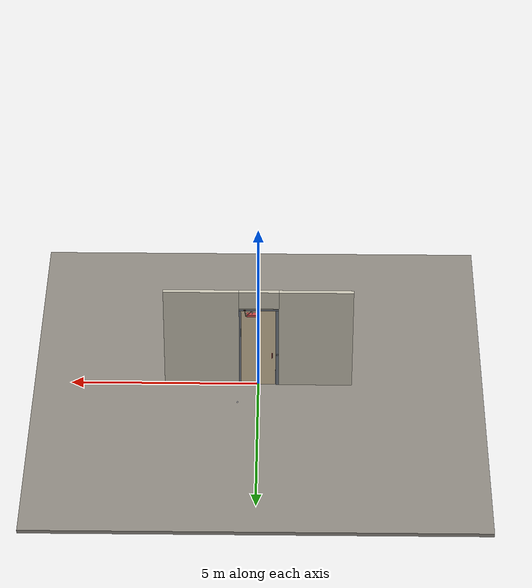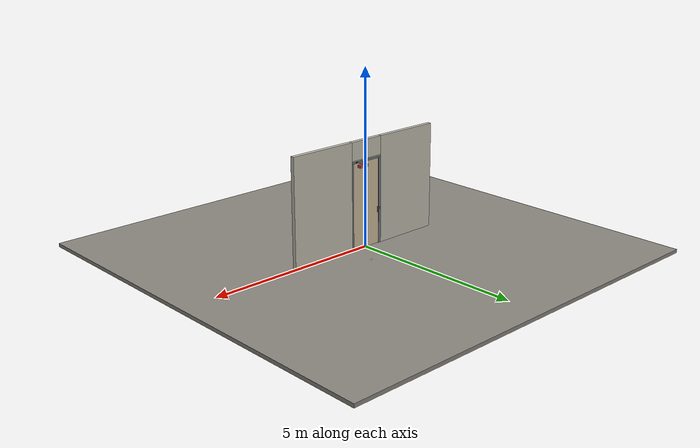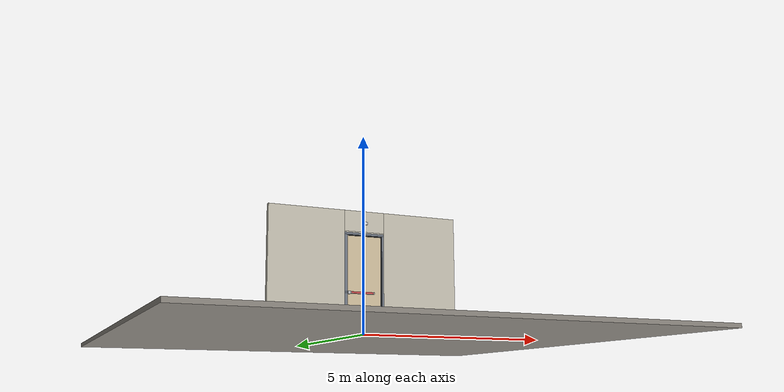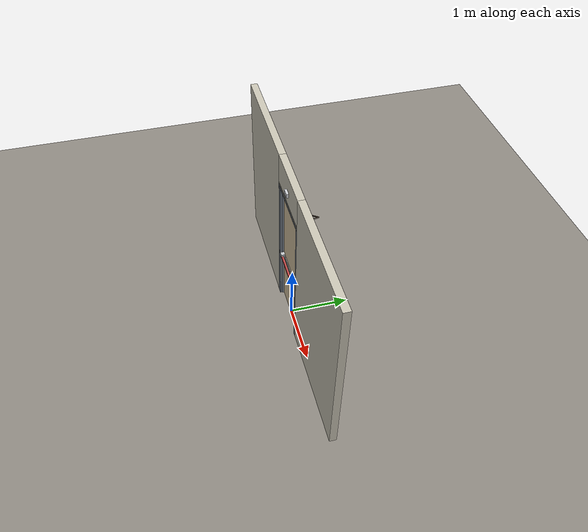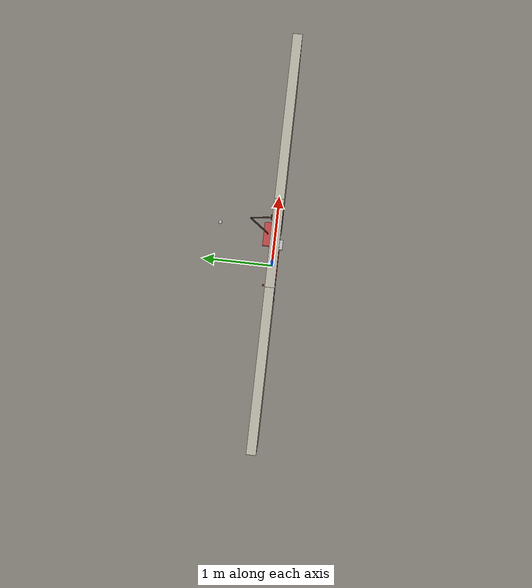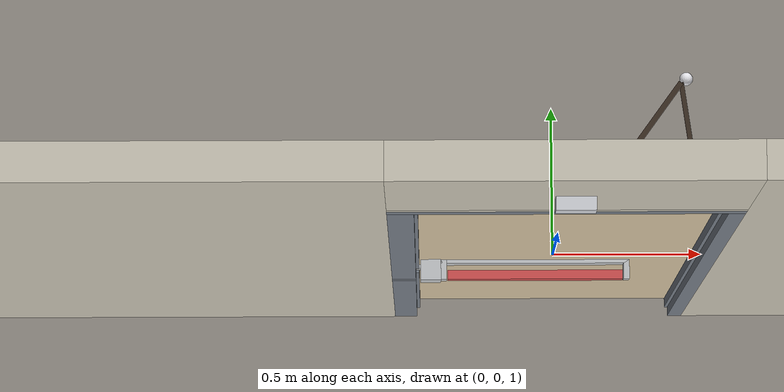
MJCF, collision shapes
<?xml version="1.0" ?>
<mujoco model="db0618_swing_single_full">
  <compiler angle="radian" meshdir="../../hardware" texturedir="../../textures" autolimits="true" inertiafromgeom="false"/>
  <option timestep="0.002" integrator="implicitfast" cone="elliptic" impratio="10" noslip_iterations="3">
    <flag multiccd="enable"/>
  </option>
  <size memory="16M"/>
  <default>
    <geom condim="4" solref="0.005 1" solimp="0.95 0.99 0.001"/>
    <joint solreflimit="0.005 1" solimplimit="0.95 0.99 0.001"/>
    <tendon solreflimit="0.005 1"/>
    <equality solref="0.002 1"/>
  </default>
  <visual>
    <headlight ambient="0.4 0.4 0.4" diffuse="0.7 0.7 0.7" specular="0.2 0.2 0.2"/>
    <quality shadowsize="4096"/>
    <map znear="0.01" zfar="60"/>
  </visual>
  <asset>
    <mesh name="closer_body_fdc4667657" file="closer_body_fdc4667657.obj"/>
    <mesh name="exit_sign_a6449bfa2c" file="exit_sign_a6449bfa2c.obj"/>
    <mesh name="hinge_e22b26c0c1" file="hinge_e22b26c0c1.obj"/>
    <mesh name="hinge_jamb_e1d088f8dc" file="hinge_jamb_e1d088f8dc.obj"/>
    <mesh name="pull_1e5d69a91a" file="pull_1e5d69a91a.obj"/>
    <mesh name="touchbar_pad_2729a067b4" file="touchbar_pad_2729a067b4.obj"/>
    <material name="mat_floor" rgba="0.55 0.53 0.5 1" specular="0.2" shininess="0.15" reflectance="0"/>
    <material name="mat_wall" rgba="0.78 0.76 0.7 1" specular="0.2" shininess="0.1" reflectance="0"/>
    <material name="mat_leaf" rgba="0.82 0.75 0.62 1" specular="0.23" shininess="0.34" reflectance="0.02"/>
    <material name="mat_leaf_louver" rgba="0.697 0.637 0.527 1" specular="0.2" shininess="0.4" reflectance="0"/>
    <material name="mat_hinge" rgba="0.65 0.66 0.68 1" specular="0.74" shininess="0.5" reflectance="0.36"/>
    <material name="mat_op_stainless" rgba="0.75 0.76 0.77 1" specular="0.8" shininess="0.65" reflectance="0.4"/>
    <material name="mat_bolt" rgba="0.75 0.76 0.77 1" specular="0.8" shininess="0.65" reflectance="0.4"/>
    <material name="mat_frame" rgba="0.45 0.48 0.52 1" specular="0.32" shininess="0.6" reflectance="0.08"/>
    <material name="mat_seal" rgba="0.1 0.1 0.1 1" specular="0.2" shininess="0.1" reflectance="0"/>
    <material name="mat_closer" rgba="0.22 0.17 0.13 1" specular="0.8" shininess="0.6" reflectance="0.4"/>
    <material name="mat_exit_sign" rgba="0.85 0.1 0.1 1" specular="0.2" shininess="0.6" reflectance="0"/>
    <material name="mat_sign_bracket" rgba="0.8 0.81 0.83 1" specular="0.8" shininess="0.6" reflectance="0.4"/>
    <material name="mat_stop" rgba="0.9 0.9 0.92 1" specular="0.8" shininess="0.9" reflectance="0.4"/>
    <texture name="skybox" type="skybox" builtin="gradient" rgb1="0.6 0.7 0.85" rgb2="0.9 0.92 0.95" width="256" height="256"/>
  </asset>
  <worldbody>
    <light name="sun" pos="1.5 -2.5 4" dir="-0.3 0.5 -0.8" directional="true" diffuse="0.8 0.8 0.8" specular="0.3 0.3 0.3" castshadow="true"/>
    <light name="fill" pos="-1.5 2.5 3" dir="0.3 -0.5 -0.7" directional="true" diffuse="0.35 0.35 0.4" castshadow="false"/>
    <camera name="robot_view" pos="0 -2.951313 2.043887" xyaxes="1 0 0 0 0.26963 0.962964" fovy="52"/>
    <camera name="far_view" pos="0 2.894312 2.043887" xyaxes="-1 0 0 0 -0.26963 0.962964" fovy="52"/>
    <camera name="iso" pos="-2.221337 -2.483663 2.511538" xyaxes="0.741536 -0.670913 0 0.242917 0.268487 0.932151" fovy="46"/>
    <camera name="detail_handle" pos="-0.1865 -0.718 1.296" xyaxes="0.97561 0.219512 0 -0.070934 0.315262 0.94635" fovy="38"/>
    <geom name="floor" type="box" size="6 6 0.05" pos="0 0 -0.05" material="mat_floor" group="0" contype="1" conaffinity="1" friction="0.8 0.005 0.0001" density="2400"/>
    <geom name="wall_left" type="box" size="0.97975 0.0575 1.5255" pos="-1.52025 -0.0285 1.5255" material="mat_wall" group="0" contype="1" conaffinity="1" friction="0.6 0.005 0.0001" density="800"/>
    <geom name="wall_right" type="box" size="0.99475 0.0575 1.5255" pos="1.50525 -0.0285 1.5255" material="mat_wall" group="0" contype="1" conaffinity="1" friction="0.6 0.005 0.0001" density="800"/>
    <geom name="wall_header" type="box" size="0.5255 0.0575 0.26" pos="-0.015 -0.0285 2.791" material="mat_wall" group="0" contype="1" conaffinity="1" friction="0.6 0.005 0.0001" density="800"/>
    <geom name="hinge_0_jamb" type="mesh" mesh="hinge_jamb_e1d088f8dc" pos="0.4575 0.029 0.259" quat="0 0 0 1" material="mat_hinge" group="1" contype="0" conaffinity="0" density="7850"/>
    <geom name="hinge_1_jamb" type="mesh" mesh="hinge_jamb_e1d088f8dc" pos="0.4575 0.029 0.928333" quat="0 0 0 1" material="mat_hinge" group="1" contype="0" conaffinity="0" density="7850"/>
    <geom name="hinge_2_jamb" type="mesh" mesh="hinge_jamb_e1d088f8dc" pos="0.4575 0.029 1.597667" quat="0 0 0 1" material="mat_hinge" group="1" contype="0" conaffinity="0" density="7850"/>
    <geom name="hinge_3_jamb" type="mesh" mesh="hinge_jamb_e1d088f8dc" pos="0.4575 0.029 2.267" quat="0 0 0 1" material="mat_hinge" group="1" contype="0" conaffinity="0" density="7850"/>
    <geom name="jamb_hinge" type="box" size="0.025 0.0575 1.2255" pos="0.4855 -0.0285 1.2255" material="mat_frame" group="0" contype="1" conaffinity="1" friction="0.6 0.005 0.0001" density="300"/>
    <geom name="strike_1016_wall_n" type="box" size="0.04 0.0155 0.02" pos="-0.5005 -0.0705 1.016" material="mat_frame" group="0" contype="1" conaffinity="1" friction="0.6 0.005 0.0001" density="300"/>
    <geom name="strike_1016_wall_p" type="box" size="0.04 0.008 0.02" pos="-0.5005 -0.025 1.016" material="mat_frame" group="0" contype="1" conaffinity="1" friction="0.6 0.005 0.0001" density="300"/>
    <geom name="strike_1016_ramp" type="box" size="0.04 0.034482 0.02" pos="-0.508781 0.0044 1.016" quat="0.989198 0 0 0.146587" material="mat_frame" group="0" contype="1" conaffinity="1" friction="0.12 0.005 0.0001" density="300"/>
    <geom name="strike_1016_back" type="box" size="0.0285 0.011 0.02" pos="-0.512 -0.044 1.016" material="mat_frame" group="0" contype="1" conaffinity="1" friction="0.6 0.005 0.0001" density="300"/>
    <geom name="jamb_strike_0" type="box" size="0.04 0.0575 0.498" pos="-0.5005 -0.0285 0.498" material="mat_frame" group="0" contype="1" conaffinity="1" friction="0.6 0.005 0.0001" density="300"/>
    <geom name="jamb_strike_1" type="box" size="0.04 0.0575 0.7075" pos="-0.5005 -0.0285 1.7435" material="mat_frame" group="0" contype="1" conaffinity="1" friction="0.6 0.005 0.0001" density="300"/>
    <geom name="jamb_head" type="box" size="0.5255 0.0575 0.025" pos="-0.015 -0.0285 2.476" material="mat_frame" group="0" contype="1" conaffinity="1" friction="0.6 0.005 0.0001" density="300"/>
    <geom name="head_stud" type="box" size="0.5255 0.0575 0.015" pos="-0.015 -0.0285 2.516" material="mat_wall" group="0" contype="1" conaffinity="1" friction="0.6 0.005 0.0001" density="500"/>
    <geom name="stop_hinge" type="box" size="0.0055 0.016 1.2255" pos="0.455 -0.0385 1.2255" material="mat_frame" group="0" contype="1" conaffinity="1" friction="0.6 0.005 0.0001" density="300"/>
    <geom name="stop_strike" type="box" size="0.0055 0.016 0.48425" pos="-0.455 -0.0385 0.48425" material="mat_frame" group="0" contype="1" conaffinity="1" friction="0.6 0.005 0.0001" density="300"/>
    <geom name="stop_strike_1" type="box" size="0.0055 0.016 0.69375" pos="-0.455 -0.0385 1.75725" material="mat_frame" group="0" contype="1" conaffinity="1" friction="0.6 0.005 0.0001" density="300"/>
    <geom name="stop_head" type="box" size="0.4605 0.016 0.0055" pos="0 -0.0385 2.4455" material="mat_frame" group="0" contype="1" conaffinity="1" friction="0.6 0.005 0.0001" density="300"/>
    <geom name="seal_hinge" type="box" size="0.004 0.0025 1.2255" pos="0.4575 -0.0245 1.2255" material="mat_seal" group="1" contype="0" conaffinity="0" density="1100"/>
    <geom name="seal_strike" type="box" size="0.004 0.0025 0.48425" pos="-0.4575 -0.0245 0.48425" material="mat_seal" group="1" contype="0" conaffinity="0" density="1100"/>
    <geom name="seal_strike_1" type="box" size="0.004 0.0025 0.69375" pos="-0.4575 -0.0245 1.75725" material="mat_seal" group="1" contype="0" conaffinity="0" density="1100"/>
    <geom name="seal_head" type="box" size="0.4405 0.0025 0.008" pos="0 -0.0245 2.439" material="mat_seal" group="1" contype="0" conaffinity="0" density="1100"/>
    <geom name="closer_bracket" type="box" size="0.03 0.012 0.014" pos="0.3605 0.041 2.481" material="mat_closer" group="1" contype="0" conaffinity="0" density="2700"/>
    <geom name="exit_sign" type="mesh" mesh="exit_sign_a6449bfa2c" pos="0 -0.15 2.751" material="mat_exit_sign" group="2" contype="0" conaffinity="0" density="500"/>
    <geom name="exit_sign_bracket" type="box" size="0.05775 0.02 0.035" pos="0 -0.1055 2.751" material="mat_sign_bracket" group="2" contype="0" conaffinity="0" density="7850"/>
    <geom name="floor_stop_dome" type="sphere" size="0.025" pos="0.545135 0.801201 0" material="mat_stop" group="0" contype="1" conaffinity="1" friction="0.6 0.005 0.0001" density="7000"/>
    <site name="approach_point" pos="0 -1.5 0" quat="1 0 0 0" size="0.05" rgba="0.2 0.9 0.2 0.5" group="4"/>
    <site name="goal_point" pos="0 1.5 0" quat="1 0 0 0" size="0.05" rgba="0.2 0.9 0.2 0.5" group="4"/>
    <site name="door_plane_center" pos="0 0 1.2255" quat="1 0 0 0" size="0.02" rgba="0.2 0.9 0.2 0.5" group="4"/>
    <body name="leaf" pos="0.4605 0 0">
      <inertial pos="-0.430965 0.013729 1.448557" mass="59.310645" quat="0.515387 -0.515018 -0.495739 -0.472627" diaginertia="3.768655908 35.029955052 38.689878947"/>
      <joint name="leaf_hinge" type="hinge" axis="0 0 -1" pos="-0.003 0.029 0" limited="true" range="0 1.658063" solreflimit="0.02 1" damping="12.307281" frictionloss="2.750008" stiffness="15.508058" springref="-1.827437" armature="0.02"/>
      <geom name="leaf_slab" type="box" size="0.457 0.022 1.219" pos="-0.46 0 1.228" material="mat_leaf" group="0" contype="1" conaffinity="1" friction="0.4 0.005 0.0001" density="1"/>
      <geom name="leaf_louver_0" type="box" size="0.2285 0.002 0.02625" pos="-0.46 0 0.284" quat="0.953717 0.300706 0 0" material="mat_leaf_louver" group="1" contype="0" conaffinity="0" density="1"/>
      <geom name="leaf_louver_1" type="box" size="0.2285 0.002 0.02625" pos="-0.46 0 0.334" quat="0.953717 0.300706 0 0" material="mat_leaf_louver" group="1" contype="0" conaffinity="0" density="1"/>
      <geom name="leaf_louver_2" type="box" size="0.2285 0.002 0.02625" pos="-0.46 0 0.384" quat="0.953717 0.300706 0 0" material="mat_leaf_louver" group="1" contype="0" conaffinity="0" density="1"/>
      <geom name="leaf_louver_3" type="box" size="0.2285 0.002 0.02625" pos="-0.46 0 0.434" quat="0.953717 0.300706 0 0" material="mat_leaf_louver" group="1" contype="0" conaffinity="0" density="1"/>
      <geom name="leaf_louver_4" type="box" size="0.2285 0.002 0.02625" pos="-0.46 0 0.484" quat="0.953717 0.300706 0 0" material="mat_leaf_louver" group="1" contype="0" conaffinity="0" density="1"/>
      <geom name="leaf_louver_5" type="box" size="0.2285 0.002 0.02625" pos="-0.46 0 0.534" quat="0.953717 0.300706 0 0" material="mat_leaf_louver" group="1" contype="0" conaffinity="0" density="1"/>
      <geom name="leaf_louver_6" type="box" size="0.2285 0.002 0.02625" pos="-0.46 0 0.584" quat="0.953717 0.300706 0 0" material="mat_leaf_louver" group="1" contype="0" conaffinity="0" density="1"/>
      <geom name="leaf_louver_7" type="box" size="0.2285 0.002 0.02625" pos="-0.46 0 0.634" quat="0.953717 0.300706 0 0" material="mat_leaf_louver" group="1" contype="0" conaffinity="0" density="1"/>
      <geom name="leaf_louver_8" type="box" size="0.2285 0.002 0.02625" pos="-0.46 0 0.684" quat="0.953717 0.300706 0 0" material="mat_leaf_louver" group="1" contype="0" conaffinity="0" density="1"/>
      <geom name="hinge_0" type="mesh" mesh="hinge_e22b26c0c1" pos="-0.003 0.029 0.259" quat="0 0 0 1" material="mat_hinge" group="1" contype="0" conaffinity="0" density="7850"/>
      <geom name="hinge_1" type="mesh" mesh="hinge_e22b26c0c1" pos="-0.003 0.029 0.928333" quat="0 0 0 1" material="mat_hinge" group="1" contype="0" conaffinity="0" density="7850"/>
      <geom name="hinge_2" type="mesh" mesh="hinge_e22b26c0c1" pos="-0.003 0.029 1.597667" quat="0 0 0 1" material="mat_hinge" group="1" contype="0" conaffinity="0" density="7850"/>
      <geom name="hinge_3" type="mesh" mesh="hinge_e22b26c0c1" pos="-0.003 0.029 2.267" quat="0 0 0 1" material="mat_hinge" group="1" contype="0" conaffinity="0" density="7850"/>
      <geom name="leaf_exit_device_rail" type="box" size="0.31705 0.006 0.025" pos="-0.51995 -0.028 1.016" material="mat_op_stainless" group="0" contype="1" conaffinity="1" friction="0.6 0.005 0.0001" density="3000"/>
      <geom name="leaf_exit_device_rail_end_n" type="box" size="0.01 0.0325 0.025" pos="-0.827 -0.0545 1.016" material="mat_op_stainless" group="0" contype="1" conaffinity="1" friction="0.6 0.005 0.0001" density="3000"/>
      <geom name="leaf_exit_device_rail_end_p" type="box" size="0.01 0.0325 0.025" pos="-0.2129 -0.0545 1.016" material="mat_op_stainless" group="0" contype="1" conaffinity="1" friction="0.6 0.005 0.0001" density="3000"/>
      <geom name="leaf_exit_device_case" type="box" size="0.034 0.034125 0.0375" pos="-0.871 -0.056125 1.016" material="mat_op_stainless" group="0" contype="1" conaffinity="1" friction="0.6 0.005 0.0001" density="3000"/>
      <geom name="leaf_far_pull_p" type="mesh" mesh="pull_1e5d69a91a" pos="-0.827 0.022 1.016" quat="0 0 0.707107 0.707107" material="mat_op_stainless" group="1" contype="0" conaffinity="0" density="3000"/>
      <geom name="leaf_far_pull_col_p" type="capsule" size="0.0095 0.08" pos="-0.827 0.082 1.016" material="mat_op_stainless" group="3" contype="1" conaffinity="1" rgba="0.8 0.3 0.3 0.25" friction="0.7 0.01 0.0001" density="3000"/>
      <geom name="closer_body" type="mesh" mesh="closer_body_fdc4667657" pos="-0.3 0.022 2.358" quat="0 0 0.707107 0.707107" material="mat_closer" group="1" contype="0" conaffinity="0" density="2000"/>
      <geom name="closer_body_col" type="box" size="0.145 0.05 0.035" pos="-0.3 0.072 2.358" material="mat_closer" group="3" contype="1" conaffinity="1" rgba="0.8 0.3 0.3 0.25" friction="0.6 0.005 0.0001" density="2000"/>
      <geom name="closer_pinion_shaft" type="cylinder" size="0.008 0.0615" pos="-0.3 0.072 2.4195" material="mat_closer" group="1" contype="0" conaffinity="0" density="2700"/>
      <site name="leaf_far_pull_grip_p" pos="-0.827 0.082 1.016" quat="1 0 0 0" size="0.012" rgba="0.2 0.9 0.2 0.5" group="4"/>
      <site name="leaf_edge_mid" pos="-0.917 0 1.219" quat="1 0 0 0" size="0.02" rgba="0.2 0.9 0.2 0.5" group="4"/>
      <body name="leaf_exit_device" pos="-0.51995 -0.022 1.016">
        <inertial pos="0 -0.05 0" mass="4.76361" quat="0 0 -0.707107 0.707107" diaginertia="0.00116113 0.137653089 0.138099678"/>
        <joint name="leaf_exit_device_slide" type="slide" axis="0 1 0" limited="true" range="0 0.016" damping="153.575154" frictionloss="0.5" stiffness="1200" springref="-0.015" armature="0.15"/>
        <geom name="leaf_exit_device_pad" type="mesh" mesh="touchbar_pad_2729a067b4" pos="0 0 0" quat="0 0 -0.707107 0.707107" material="mat_op_stainless" group="1" contype="0" conaffinity="0" density="3000"/>
        <geom name="leaf_exit_device_pad_col" type="box" size="0.29405 0.015 0.0225" pos="0 -0.05 0" material="mat_op_stainless" group="3" contype="1" conaffinity="1" rgba="0.8 0.3 0.3 0.25" friction="0.8 0.01 0.0001" density="3000"/>
        <site name="leaf_exit_device_push" pos="0 -0.065 0" quat="1 0 0 0" size="0.015" rgba="0.2 0.9 0.2 0.5" group="4"/>
      </body>
      <body name="leaf_latch_bolt" pos="-0.917 -0.044 1.016">
        <inertial pos="0.0055 0 0" mass="0.102826" quat="0.92388 0.382683 0 0" diaginertia="0.000004365 0.000018287 0.000018287"/>
        <joint name="leaf_latch_bolt_slide" type="slide" axis="1 0 0" limited="true" range="0 0.019" damping="2" frictionloss="0.3" stiffness="800" springref="-0.01" armature="0.1"/>
        <geom name="leaf_latch_bolt_capsule" type="capsule" size="0.0095 0.015" pos="0.0055 0 0" quat="0.707107 0 -0.707107 0" material="mat_bolt" group="0" contype="1" conaffinity="1" friction="0.2 0.005 0.0001" density="8500"/>
      </body>
      <body name="closer_arm_main" pos="-0.3 0.072 2.481" quat="0.890947 0 0 0.454107">
        <inertial pos="0.14 0 0" mass="0.12096" quat="1 0 0 0" diaginertia="0.000003588 0.00079128 0.000792852"/>
        <joint name="closer_pinion" type="hinge" axis="0 0 1" limited="false" damping="0.01" armature="0.002"/>
        <geom name="closer_arm_main_geom" type="box" size="0.14 0.008 0.005" pos="0.14 0 0" material="mat_closer" group="1" contype="0" conaffinity="0" density="2700"/>
        <body name="closer_arm_fore" pos="0.28 0 0" quat="0.373215 0 0 -0.927745">
          <inertial pos="0.128088 0 0" mass="0.076531" quat="1 0 0 0" diaginertia="0.000001771 0.000437665 0.000438201"/>
          <joint name="closer_elbow" type="hinge" axis="0 0 1" limited="false" damping="0.01" armature="0.002"/>
          <geom name="closer_arm_fore_geom" type="box" size="0.1125 0.007 0.004" pos="0.1125 0 0" material="mat_closer" group="1" contype="0" conaffinity="0" density="2700"/>
          <geom name="closer_fore_neck" type="box" size="0.0175 0.003 0.003" pos="0.2425 0 0" material="mat_closer" group="1" contype="0" conaffinity="0" density="2700"/>
          <geom name="closer_fore_pivot" type="cylinder" size="0.005 0.012" pos="0.26 0 0" material="mat_closer" group="1" contype="0" conaffinity="0" density="2700"/>
        </body>
      </body>
    </body>
  </worldbody>
  <tendon>
    <fixed name="leaf_latch_bolt_coupling" limited="true" range="0 10">
      <joint joint="leaf_latch_bolt_slide" coef="1"/>
      <joint joint="leaf_exit_device_slide" coef="-1.357143"/>
    </fixed>
  </tendon>
  <equality>
    <connect name="closer_arm_connect" body1="closer_arm_fore" body2="world" anchor="0.26 0 0" active="true"/>
  </equality>
  <contact>
    <exclude body1="closer_arm_main" body2="leaf"/>
    <exclude body1="closer_arm_fore" body2="leaf"/>
    <exclude body1="closer_arm_main" body2="closer_arm_fore"/>
  </contact>
  <sensor>
    <jointpos name="leaf_hinge_pos" joint="leaf_hinge"/>
    <jointvel name="leaf_hinge_vel" joint="leaf_hinge"/>
    <jointpos name="leaf_exit_device_slide_pos" joint="leaf_exit_device_slide"/>
    <jointvel name="leaf_exit_device_slide_vel" joint="leaf_exit_device_slide"/>
    <jointpos name="leaf_latch_bolt_slide_pos" joint="leaf_latch_bolt_slide"/>
    <jointvel name="leaf_latch_bolt_slide_vel" joint="leaf_latch_bolt_slide"/>
  </sensor>
</mujoco>
